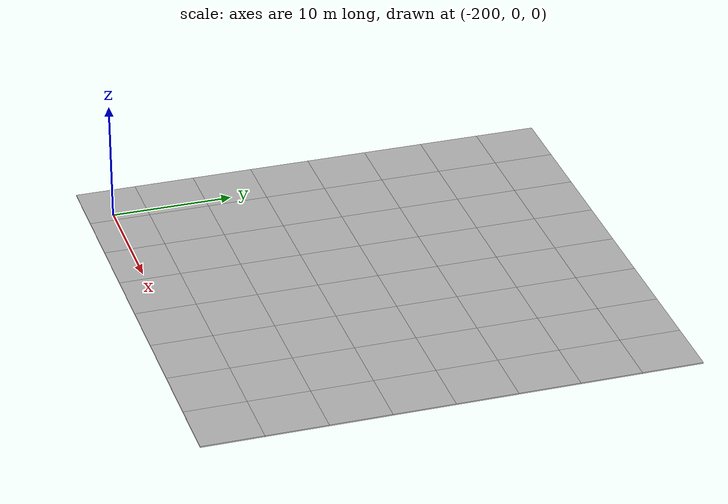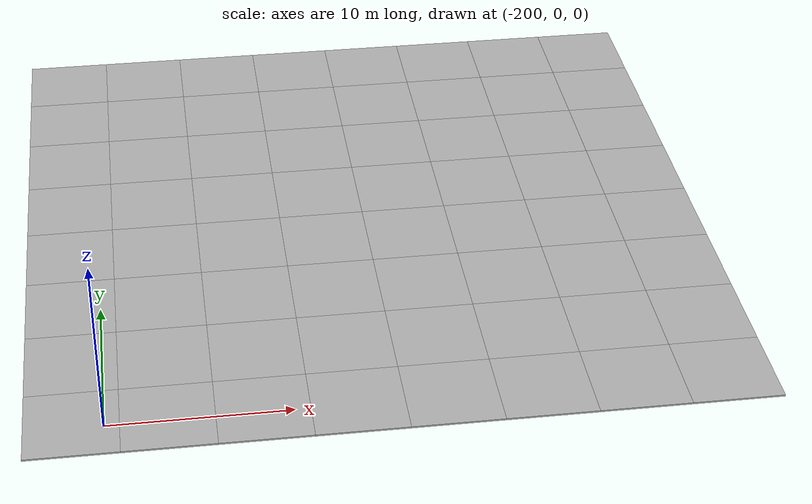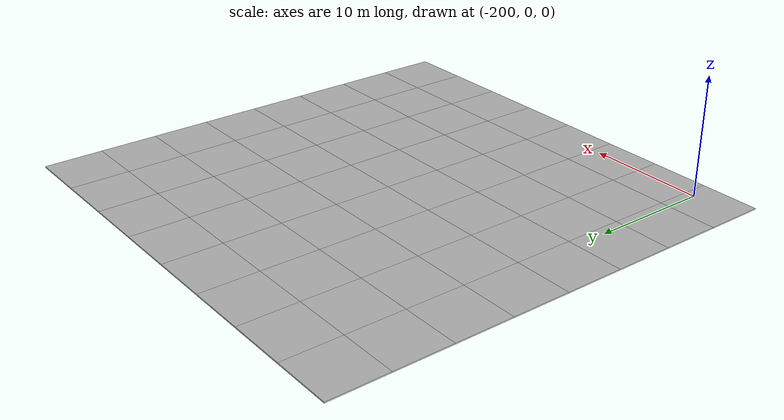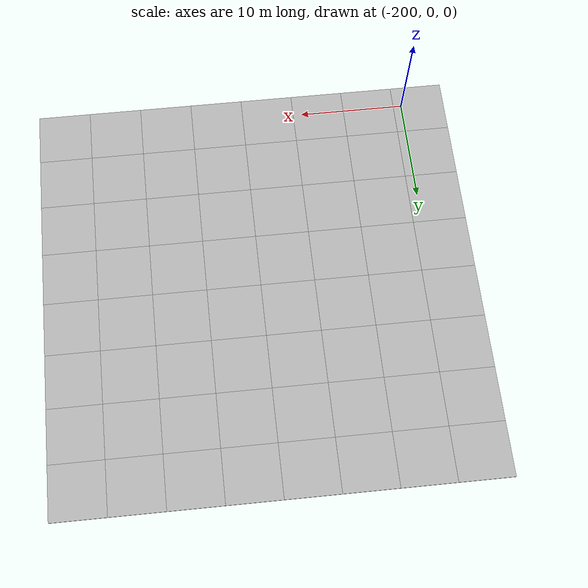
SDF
<sdf version="1.7">
 <world name="default">
  <model name="mud_plane_40x40_26">
   <model name="mud_plane_20x20">
    <model name="mud_plane">
     <static>1</static>
     <link name="link">
      <collision name="collision"><geometry><box><size>10 10 0.1</size></box></geometry></collision>
      <visual name="visual_1">
       <pose>-2.5 2.5 -0.05 0 -0 0</pose>
       <cast_shadows>0</cast_shadows>
       <geometry><box><size>5 5 0.1</size></box></geometry>
       <material>
        <script>
         <uri>model://mud_plane/materials/scripts</uri>
         <uri>model://mud_plane/materials/textures</uri>
         <name>vrc/mud</name>
        </script>
       </material>
      </visual>
      <visual name="visual_2">
       <pose>2.5 2.5 -0.05 0 -0 0</pose>
       <cast_shadows>0</cast_shadows>
       <geometry><box><size>5 5 0.1</size></box></geometry>
       <material>
        <script>
         <uri>model://mud_plane/materials/scripts</uri>
         <uri>model://mud_plane/materials/textures</uri>
         <name>vrc/mud</name>
        </script>
       </material>
      </visual>
      <visual name="visual_3">
       <pose>2.5 -2.5 -0.05 0 -0 0</pose>
       <cast_shadows>0</cast_shadows>
       <geometry><box><size>5 5 0.1</size></box></geometry>
       <material>
        <script>
         <uri>model://mud_plane/materials/scripts</uri>
         <uri>model://mud_plane/materials/textures</uri>
         <name>vrc/mud</name>
        </script>
       </material>
      </visual>
      <visual name="visual_4">
       <pose>-2.5 -2.5 -0.05 0 -0 0</pose>
       <cast_shadows>0</cast_shadows>
       <geometry><box><size>5 5 0.1</size></box></geometry>
       <material>
        <script>
         <uri>model://mud_plane/materials/scripts</uri>
         <uri>model://mud_plane/materials/textures</uri>
         <name>vrc/mud</name>
        </script>
       </material>
      </visual>
     </link>
     <pose>-4.99986 -4.99991 0 0 -0 0</pose>
    </model>
    <model name="mud_plane_0">
     <static>1</static>
     <link name="link">
      <collision name="collision"><geometry><box><size>10 10 0.1</size></box></geometry></collision>
      <visual name="visual_1">
       <pose>-2.5 2.5 -0.05 0 -0 0</pose>
       <cast_shadows>0</cast_shadows>
       <geometry><box><size>5 5 0.1</size></box></geometry>
       <material>
        <script>
         <uri>model://mud_plane/materials/scripts</uri>
         <uri>model://mud_plane/materials/textures</uri>
         <name>vrc/mud</name>
        </script>
       </material>
      </visual>
      <visual name="visual_2">
       <pose>2.5 2.5 -0.05 0 -0 0</pose>
       <cast_shadows>0</cast_shadows>
       <geometry><box><size>5 5 0.1</size></box></geometry>
       <material>
        <script>
         <uri>model://mud_plane/materials/scripts</uri>
         <uri>model://mud_plane/materials/textures</uri>
         <name>vrc/mud</name>
        </script>
       </material>
      </visual>
      <visual name="visual_3">
       <pose>2.5 -2.5 -0.05 0 -0 0</pose>
       <cast_shadows>0</cast_shadows>
       <geometry><box><size>5 5 0.1</size></box></geometry>
       <material>
        <script>
         <uri>model://mud_plane/materials/scripts</uri>
         <uri>model://mud_plane/materials/textures</uri>
         <name>vrc/mud</name>
        </script>
       </material>
      </visual>
      <visual name="visual_4">
       <pose>-2.5 -2.5 -0.05 0 -0 0</pose>
       <cast_shadows>0</cast_shadows>
       <geometry><box><size>5 5 0.1</size></box></geometry>
       <material>
        <script>
         <uri>model://mud_plane/materials/scripts</uri>
         <uri>model://mud_plane/materials/textures</uri>
         <name>vrc/mud</name>
        </script>
       </material>
      </visual>
     </link>
     <pose>-4.99946 4.99954 0 0 -0 0</pose>
    </model>
    <model name="mud_plane_1">
     <static>1</static>
     <link name="link">
      <collision name="collision"><geometry><box><size>10 10 0.1</size></box></geometry></collision>
      <visual name="visual_1">
       <pose>-2.5 2.5 -0.05 0 -0 0</pose>
       <cast_shadows>0</cast_shadows>
       <geometry><box><size>5 5 0.1</size></box></geometry>
       <material>
        <script>
         <uri>model://mud_plane/materials/scripts</uri>
         <uri>model://mud_plane/materials/textures</uri>
         <name>vrc/mud</name>
        </script>
       </material>
      </visual>
      <visual name="visual_2">
       <pose>2.5 2.5 -0.05 0 -0 0</pose>
       <cast_shadows>0</cast_shadows>
       <geometry><box><size>5 5 0.1</size></box></geometry>
       <material>
        <script>
         <uri>model://mud_plane/materials/scripts</uri>
         <uri>model://mud_plane/materials/textures</uri>
         <name>vrc/mud</name>
        </script>
       </material>
      </visual>
      <visual name="visual_3">
       <pose>2.5 -2.5 -0.05 0 -0 0</pose>
       <cast_shadows>0</cast_shadows>
       <geometry><box><size>5 5 0.1</size></box></geometry>
       <material>
        <script>
         <uri>model://mud_plane/materials/scripts</uri>
         <uri>model://mud_plane/materials/textures</uri>
         <name>vrc/mud</name>
        </script>
       </material>
      </visual>
      <visual name="visual_4">
       <pose>-2.5 -2.5 -0.05 0 -0 0</pose>
       <cast_shadows>0</cast_shadows>
       <geometry><box><size>5 5 0.1</size></box></geometry>
       <material>
        <script>
         <uri>model://mud_plane/materials/scripts</uri>
         <uri>model://mud_plane/materials/textures</uri>
         <name>vrc/mud</name>
        </script>
       </material>
      </visual>
     </link>
     <pose>4.99964 -4.99949 0 0 -0 0</pose>
    </model>
    <model name="mud_plane_2">
     <static>1</static>
     <link name="link">
      <collision name="collision"><geometry><box><size>10 10 0.1</size></box></geometry></collision>
      <visual name="visual_1">
       <pose>-2.5 2.5 -0.05 0 -0 0</pose>
       <cast_shadows>0</cast_shadows>
       <geometry><box><size>5 5 0.1</size></box></geometry>
       <material>
        <script>
         <uri>model://mud_plane/materials/scripts</uri>
         <uri>model://mud_plane/materials/textures</uri>
         <name>vrc/mud</name>
        </script>
       </material>
      </visual>
      <visual name="visual_2">
       <pose>2.5 2.5 -0.05 0 -0 0</pose>
       <cast_shadows>0</cast_shadows>
       <geometry><box><size>5 5 0.1</size></box></geometry>
       <material>
        <script>
         <uri>model://mud_plane/materials/scripts</uri>
         <uri>model://mud_plane/materials/textures</uri>
         <name>vrc/mud</name>
        </script>
       </material>
      </visual>
      <visual name="visual_3">
       <pose>2.5 -2.5 -0.05 0 -0 0</pose>
       <cast_shadows>0</cast_shadows>
       <geometry><box><size>5 5 0.1</size></box></geometry>
       <material>
        <script>
         <uri>model://mud_plane/materials/scripts</uri>
         <uri>model://mud_plane/materials/textures</uri>
         <name>vrc/mud</name>
        </script>
       </material>
      </visual>
      <visual name="visual_4">
       <pose>-2.5 -2.5 -0.05 0 -0 0</pose>
       <cast_shadows>0</cast_shadows>
       <geometry><box><size>5 5 0.1</size></box></geometry>
       <material>
        <script>
         <uri>model://mud_plane/materials/scripts</uri>
         <uri>model://mud_plane/materials/textures</uri>
         <name>vrc/mud</name>
        </script>
       </material>
      </visual>
     </link>
     <pose>4.99967 4.99986 0 0 -0 0</pose>
    </model>
    <static>0</static>
    <pose>-9.99895 9.99843 0 0 -0 0</pose>
   </model>
   <model name="mud_plane_20x20_0">
    <model name="mud_plane">
     <static>1</static>
     <link name="link">
      <collision name="collision"><geometry><box><size>10 10 0.1</size></box></geometry></collision>
      <visual name="visual_1">
       <pose>-2.5 2.5 -0.05 0 -0 0</pose>
       <cast_shadows>0</cast_shadows>
       <geometry><box><size>5 5 0.1</size></box></geometry>
       <material>
        <script>
         <uri>model://mud_plane/materials/scripts</uri>
         <uri>model://mud_plane/materials/textures</uri>
         <name>vrc/mud</name>
        </script>
       </material>
      </visual>
      <visual name="visual_2">
       <pose>2.5 2.5 -0.05 0 -0 0</pose>
       <cast_shadows>0</cast_shadows>
       <geometry><box><size>5 5 0.1</size></box></geometry>
       <material>
        <script>
         <uri>model://mud_plane/materials/scripts</uri>
         <uri>model://mud_plane/materials/textures</uri>
         <name>vrc/mud</name>
        </script>
       </material>
      </visual>
      <visual name="visual_3">
       <pose>2.5 -2.5 -0.05 0 -0 0</pose>
       <cast_shadows>0</cast_shadows>
       <geometry><box><size>5 5 0.1</size></box></geometry>
       <material>
        <script>
         <uri>model://mud_plane/materials/scripts</uri>
         <uri>model://mud_plane/materials/textures</uri>
         <name>vrc/mud</name>
        </script>
       </material>
      </visual>
      <visual name="visual_4">
       <pose>-2.5 -2.5 -0.05 0 -0 0</pose>
       <cast_shadows>0</cast_shadows>
       <geometry><box><size>5 5 0.1</size></box></geometry>
       <material>
        <script>
         <uri>model://mud_plane/materials/scripts</uri>
         <uri>model://mud_plane/materials/textures</uri>
         <name>vrc/mud</name>
        </script>
       </material>
      </visual>
     </link>
     <pose>-4.99986 -4.99991 0 0 -0 0</pose>
    </model>
    <model name="mud_plane_0">
     <static>1</static>
     <link name="link">
      <collision name="collision"><geometry><box><size>10 10 0.1</size></box></geometry></collision>
      <visual name="visual_1">
       <pose>-2.5 2.5 -0.05 0 -0 0</pose>
       <cast_shadows>0</cast_shadows>
       <geometry><box><size>5 5 0.1</size></box></geometry>
       <material>
        <script>
         <uri>model://mud_plane/materials/scripts</uri>
         <uri>model://mud_plane/materials/textures</uri>
         <name>vrc/mud</name>
        </script>
       </material>
      </visual>
      <visual name="visual_2">
       <pose>2.5 2.5 -0.05 0 -0 0</pose>
       <cast_shadows>0</cast_shadows>
       <geometry><box><size>5 5 0.1</size></box></geometry>
       <material>
        <script>
         <uri>model://mud_plane/materials/scripts</uri>
         <uri>model://mud_plane/materials/textures</uri>
         <name>vrc/mud</name>
        </script>
       </material>
      </visual>
      <visual name="visual_3">
       <pose>2.5 -2.5 -0.05 0 -0 0</pose>
       <cast_shadows>0</cast_shadows>
       <geometry><box><size>5 5 0.1</size></box></geometry>
       <material>
        <script>
         <uri>model://mud_plane/materials/scripts</uri>
         <uri>model://mud_plane/materials/textures</uri>
         <name>vrc/mud</name>
        </script>
       </material>
      </visual>
      <visual name="visual_4">
       <pose>-2.5 -2.5 -0.05 0 -0 0</pose>
       <cast_shadows>0</cast_shadows>
       <geometry><box><size>5 5 0.1</size></box></geometry>
       <material>
        <script>
         <uri>model://mud_plane/materials/scripts</uri>
         <uri>model://mud_plane/materials/textures</uri>
         <name>vrc/mud</name>
        </script>
       </material>
      </visual>
     </link>
     <pose>-4.99946 4.99954 0 0 -0 0</pose>
    </model>
    <model name="mud_plane_1">
     <static>1</static>
     <link name="link">
      <collision name="collision"><geometry><box><size>10 10 0.1</size></box></geometry></collision>
      <visual name="visual_1">
       <pose>-2.5 2.5 -0.05 0 -0 0</pose>
       <cast_shadows>0</cast_shadows>
       <geometry><box><size>5 5 0.1</size></box></geometry>
       <material>
        <script>
         <uri>model://mud_plane/materials/scripts</uri>
         <uri>model://mud_plane/materials/textures</uri>
         <name>vrc/mud</name>
        </script>
       </material>
      </visual>
      <visual name="visual_2">
       <pose>2.5 2.5 -0.05 0 -0 0</pose>
       <cast_shadows>0</cast_shadows>
       <geometry><box><size>5 5 0.1</size></box></geometry>
       <material>
        <script>
         <uri>model://mud_plane/materials/scripts</uri>
         <uri>model://mud_plane/materials/textures</uri>
         <name>vrc/mud</name>
        </script>
       </material>
      </visual>
      <visual name="visual_3">
       <pose>2.5 -2.5 -0.05 0 -0 0</pose>
       <cast_shadows>0</cast_shadows>
       <geometry><box><size>5 5 0.1</size></box></geometry>
       <material>
        <script>
         <uri>model://mud_plane/materials/scripts</uri>
         <uri>model://mud_plane/materials/textures</uri>
         <name>vrc/mud</name>
        </script>
       </material>
      </visual>
      <visual name="visual_4">
       <pose>-2.5 -2.5 -0.05 0 -0 0</pose>
       <cast_shadows>0</cast_shadows>
       <geometry><box><size>5 5 0.1</size></box></geometry>
       <material>
        <script>
         <uri>model://mud_plane/materials/scripts</uri>
         <uri>model://mud_plane/materials/textures</uri>
         <name>vrc/mud</name>
        </script>
       </material>
      </visual>
     </link>
     <pose>4.99964 -4.99949 0 0 -0 0</pose>
    </model>
    <model name="mud_plane_2">
     <static>1</static>
     <link name="link">
      <collision name="collision"><geometry><box><size>10 10 0.1</size></box></geometry></collision>
      <visual name="visual_1">
       <pose>-2.5 2.5 -0.05 0 -0 0</pose>
       <cast_shadows>0</cast_shadows>
       <geometry><box><size>5 5 0.1</size></box></geometry>
       <material>
        <script>
         <uri>model://mud_plane/materials/scripts</uri>
         <uri>model://mud_plane/materials/textures</uri>
         <name>vrc/mud</name>
        </script>
       </material>
      </visual>
      <visual name="visual_2">
       <pose>2.5 2.5 -0.05 0 -0 0</pose>
       <cast_shadows>0</cast_shadows>
       <geometry><box><size>5 5 0.1</size></box></geometry>
       <material>
        <script>
         <uri>model://mud_plane/materials/scripts</uri>
         <uri>model://mud_plane/materials/textures</uri>
         <name>vrc/mud</name>
        </script>
       </material>
      </visual>
      <visual name="visual_3">
       <pose>2.5 -2.5 -0.05 0 -0 0</pose>
       <cast_shadows>0</cast_shadows>
       <geometry><box><size>5 5 0.1</size></box></geometry>
       <material>
        <script>
         <uri>model://mud_plane/materials/scripts</uri>
         <uri>model://mud_plane/materials/textures</uri>
         <name>vrc/mud</name>
        </script>
       </material>
      </visual>
      <visual name="visual_4">
       <pose>-2.5 -2.5 -0.05 0 -0 0</pose>
       <cast_shadows>0</cast_shadows>
       <geometry><box><size>5 5 0.1</size></box></geometry>
       <material>
        <script>
         <uri>model://mud_plane/materials/scripts</uri>
         <uri>model://mud_plane/materials/textures</uri>
         <name>vrc/mud</name>
        </script>
       </material>
      </visual>
     </link>
     <pose>4.99967 4.99986 0 0 -0 0</pose>
    </model>
    <static>0</static>
    <pose>9.99933 9.9997 0 0 -0 0</pose>
   </model>
   <model name="mud_plane_20x20_1">
    <model name="mud_plane">
     <static>1</static>
     <link name="link">
      <collision name="collision"><geometry><box><size>10 10 0.1</size></box></geometry></collision>
      <visual name="visual_1">
       <pose>-2.5 2.5 -0.05 0 -0 0</pose>
       <cast_shadows>0</cast_shadows>
       <geometry><box><size>5 5 0.1</size></box></geometry>
       <material>
        <script>
         <uri>model://mud_plane/materials/scripts</uri>
         <uri>model://mud_plane/materials/textures</uri>
         <name>vrc/mud</name>
        </script>
       </material>
      </visual>
      <visual name="visual_2">
       <pose>2.5 2.5 -0.05 0 -0 0</pose>
       <cast_shadows>0</cast_shadows>
       <geometry><box><size>5 5 0.1</size></box></geometry>
       <material>
        <script>
         <uri>model://mud_plane/materials/scripts</uri>
         <uri>model://mud_plane/materials/textures</uri>
         <name>vrc/mud</name>
        </script>
       </material>
      </visual>
      <visual name="visual_3">
       <pose>2.5 -2.5 -0.05 0 -0 0</pose>
       <cast_shadows>0</cast_shadows>
       <geometry><box><size>5 5 0.1</size></box></geometry>
       <material>
        <script>
         <uri>model://mud_plane/materials/scripts</uri>
         <uri>model://mud_plane/materials/textures</uri>
         <name>vrc/mud</name>
        </script>
       </material>
      </visual>
      <visual name="visual_4">
       <pose>-2.5 -2.5 -0.05 0 -0 0</pose>
       <cast_shadows>0</cast_shadows>
       <geometry><box><size>5 5 0.1</size></box></geometry>
       <material>
        <script>
         <uri>model://mud_plane/materials/scripts</uri>
         <uri>model://mud_plane/materials/textures</uri>
         <name>vrc/mud</name>
        </script>
       </material>
      </visual>
     </link>
     <pose>-4.99986 -4.99991 0 0 -0 0</pose>
    </model>
    <model name="mud_plane_0">
     <static>1</static>
     <link name="link">
      <collision name="collision"><geometry><box><size>10 10 0.1</size></box></geometry></collision>
      <visual name="visual_1">
       <pose>-2.5 2.5 -0.05 0 -0 0</pose>
       <cast_shadows>0</cast_shadows>
       <geometry><box><size>5 5 0.1</size></box></geometry>
       <material>
        <script>
         <uri>model://mud_plane/materials/scripts</uri>
         <uri>model://mud_plane/materials/textures</uri>
         <name>vrc/mud</name>
        </script>
       </material>
      </visual>
      <visual name="visual_2">
       <pose>2.5 2.5 -0.05 0 -0 0</pose>
       <cast_shadows>0</cast_shadows>
       <geometry><box><size>5 5 0.1</size></box></geometry>
       <material>
        <script>
         <uri>model://mud_plane/materials/scripts</uri>
         <uri>model://mud_plane/materials/textures</uri>
         <name>vrc/mud</name>
        </script>
       </material>
      </visual>
      <visual name="visual_3">
       <pose>2.5 -2.5 -0.05 0 -0 0</pose>
       <cast_shadows>0</cast_shadows>
       <geometry><box><size>5 5 0.1</size></box></geometry>
       <material>
        <script>
         <uri>model://mud_plane/materials/scripts</uri>
         <uri>model://mud_plane/materials/textures</uri>
         <name>vrc/mud</name>
        </script>
       </material>
      </visual>
      <visual name="visual_4">
       <pose>-2.5 -2.5 -0.05 0 -0 0</pose>
       <cast_shadows>0</cast_shadows>
       <geometry><box><size>5 5 0.1</size></box></geometry>
       <material>
        <script>
         <uri>model://mud_plane/materials/scripts</uri>
         <uri>model://mud_plane/materials/textures</uri>
         <name>vrc/mud</name>
        </script>
       </material>
      </visual>
     </link>
     <pose>-4.99946 4.99954 0 0 -0 0</pose>
    </model>
    <model name="mud_plane_1">
     <static>1</static>
     <link name="link">
      <collision name="collision"><geometry><box><size>10 10 0.1</size></box></geometry></collision>
      <visual name="visual_1">
       <pose>-2.5 2.5 -0.05 0 -0 0</pose>
       <cast_shadows>0</cast_shadows>
       <geometry><box><size>5 5 0.1</size></box></geometry>
       <material>
        <script>
         <uri>model://mud_plane/materials/scripts</uri>
         <uri>model://mud_plane/materials/textures</uri>
         <name>vrc/mud</name>
        </script>
       </material>
      </visual>
      <visual name="visual_2">
       <pose>2.5 2.5 -0.05 0 -0 0</pose>
       <cast_shadows>0</cast_shadows>
       <geometry><box><size>5 5 0.1</size></box></geometry>
       <material>
        <script>
         <uri>model://mud_plane/materials/scripts</uri>
         <uri>model://mud_plane/materials/textures</uri>
         <name>vrc/mud</name>
        </script>
       </material>
      </visual>
      <visual name="visual_3">
       <pose>2.5 -2.5 -0.05 0 -0 0</pose>
       <cast_shadows>0</cast_shadows>
       <geometry><box><size>5 5 0.1</size></box></geometry>
       <material>
        <script>
         <uri>model://mud_plane/materials/scripts</uri>
         <uri>model://mud_plane/materials/textures</uri>
         <name>vrc/mud</name>
        </script>
       </material>
      </visual>
      <visual name="visual_4">
       <pose>-2.5 -2.5 -0.05 0 -0 0</pose>
       <cast_shadows>0</cast_shadows>
       <geometry><box><size>5 5 0.1</size></box></geometry>
       <material>
        <script>
         <uri>model://mud_plane/materials/scripts</uri>
         <uri>model://mud_plane/materials/textures</uri>
         <name>vrc/mud</name>
        </script>
       </material>
      </visual>
     </link>
     <pose>4.99964 -4.99949 0 0 -0 0</pose>
    </model>
    <model name="mud_plane_2">
     <static>1</static>
     <link name="link">
      <collision name="collision"><geometry><box><size>10 10 0.1</size></box></geometry></collision>
      <visual name="visual_1">
       <pose>-2.5 2.5 -0.05 0 -0 0</pose>
       <cast_shadows>0</cast_shadows>
       <geometry><box><size>5 5 0.1</size></box></geometry>
       <material>
        <script>
         <uri>model://mud_plane/materials/scripts</uri>
         <uri>model://mud_plane/materials/textures</uri>
         <name>vrc/mud</name>
        </script>
       </material>
      </visual>
      <visual name="visual_2">
       <pose>2.5 2.5 -0.05 0 -0 0</pose>
       <cast_shadows>0</cast_shadows>
       <geometry><box><size>5 5 0.1</size></box></geometry>
       <material>
        <script>
         <uri>model://mud_plane/materials/scripts</uri>
         <uri>model://mud_plane/materials/textures</uri>
         <name>vrc/mud</name>
        </script>
       </material>
      </visual>
      <visual name="visual_3">
       <pose>2.5 -2.5 -0.05 0 -0 0</pose>
       <cast_shadows>0</cast_shadows>
       <geometry><box><size>5 5 0.1</size></box></geometry>
       <material>
        <script>
         <uri>model://mud_plane/materials/scripts</uri>
         <uri>model://mud_plane/materials/textures</uri>
         <name>vrc/mud</name>
        </script>
       </material>
      </visual>
      <visual name="visual_4">
       <pose>-2.5 -2.5 -0.05 0 -0 0</pose>
       <cast_shadows>0</cast_shadows>
       <geometry><box><size>5 5 0.1</size></box></geometry>
       <material>
        <script>
         <uri>model://mud_plane/materials/scripts</uri>
         <uri>model://mud_plane/materials/textures</uri>
         <name>vrc/mud</name>
        </script>
       </material>
      </visual>
     </link>
     <pose>4.99967 4.99986 0 0 -0 0</pose>
    </model>
    <static>0</static>
    <pose>9.9993 -9.99877 0 0 -0 0</pose>
   </model>
   <model name="mud_plane_20x20_2">
    <model name="mud_plane">
     <static>1</static>
     <link name="link">
      <collision name="collision"><geometry><box><size>10 10 0.1</size></box></geometry></collision>
      <visual name="visual_1">
       <pose>-2.5 2.5 -0.05 0 -0 0</pose>
       <cast_shadows>0</cast_shadows>
       <geometry><box><size>5 5 0.1</size></box></geometry>
       <material>
        <script>
         <uri>model://mud_plane/materials/scripts</uri>
         <uri>model://mud_plane/materials/textures</uri>
         <name>vrc/mud</name>
        </script>
       </material>
      </visual>
      <visual name="visual_2">
       <pose>2.5 2.5 -0.05 0 -0 0</pose>
       <cast_shadows>0</cast_shadows>
       <geometry><box><size>5 5 0.1</size></box></geometry>
       <material>
        <script>
         <uri>model://mud_plane/materials/scripts</uri>
         <uri>model://mud_plane/materials/textures</uri>
         <name>vrc/mud</name>
        </script>
       </material>
      </visual>
      <visual name="visual_3">
       <pose>2.5 -2.5 -0.05 0 -0 0</pose>
       <cast_shadows>0</cast_shadows>
       <geometry><box><size>5 5 0.1</size></box></geometry>
       <material>
        <script>
         <uri>model://mud_plane/materials/scripts</uri>
         <uri>model://mud_plane/materials/textures</uri>
         <name>vrc/mud</name>
        </script>
       </material>
      </visual>
      <visual name="visual_4">
       <pose>-2.5 -2.5 -0.05 0 -0 0</pose>
       <cast_shadows>0</cast_shadows>
       <geometry><box><size>5 5 0.1</size></box></geometry>
       <material>
        <script>
         <uri>model://mud_plane/materials/scripts</uri>
         <uri>model://mud_plane/materials/textures</uri>
         <name>vrc/mud</name>
        </script>
       </material>
      </visual>
     </link>
     <pose>-4.99986 -4.99991 0 0 -0 0</pose>
    </model>
    <model name="mud_plane_0">
     <static>1</static>
     <link name="link">
      <collision name="collision"><geometry><box><size>10 10 0.1</size></box></geometry></collision>
      <visual name="visual_1">
       <pose>-2.5 2.5 -0.05 0 -0 0</pose>
       <cast_shadows>0</cast_shadows>
       <geometry><box><size>5 5 0.1</size></box></geometry>
       <material>
        <script>
         <uri>model://mud_plane/materials/scripts</uri>
         <uri>model://mud_plane/materials/textures</uri>
         <name>vrc/mud</name>
        </script>
       </material>
      </visual>
      <visual name="visual_2">
       <pose>2.5 2.5 -0.05 0 -0 0</pose>
       <cast_shadows>0</cast_shadows>
       <geometry><box><size>5 5 0.1</size></box></geometry>
       <material>
        <script>
         <uri>model://mud_plane/materials/scripts</uri>
         <uri>model://mud_plane/materials/textures</uri>
         <name>vrc/mud</name>
        </script>
       </material>
      </visual>
      <visual name="visual_3">
       <pose>2.5 -2.5 -0.05 0 -0 0</pose>
       <cast_shadows>0</cast_shadows>
       <geometry><box><size>5 5 0.1</size></box></geometry>
       <material>
        <script>
         <uri>model://mud_plane/materials/scripts</uri>
         <uri>model://mud_plane/materials/textures</uri>
         <name>vrc/mud</name>
        </script>
       </material>
      </visual>
      <visual name="visual_4">
       <pose>-2.5 -2.5 -0.05 0 -0 0</pose>
       <cast_shadows>0</cast_shadows>
       <geometry><box><size>5 5 0.1</size></box></geometry>
       <material>
        <script>
         <uri>model://mud_plane/materials/scripts</uri>
         <uri>model://mud_plane/materials/textures</uri>
         <name>vrc/mud</name>
        </script>
       </material>
      </visual>
     </link>
     <pose>-4.99946 4.99954 0 0 -0 0</pose>
    </model>
    <model name="mud_plane_1">
     <static>1</static>
     <link name="link">
      <collision name="collision"><geometry><box><size>10 10 0.1</size></box></geometry></collision>
      <visual name="visual_1">
       <pose>-2.5 2.5 -0.05 0 -0 0</pose>
       <cast_shadows>0</cast_shadows>
       <geometry><box><size>5 5 0.1</size></box></geometry>
       <material>
        <script>
         <uri>model://mud_plane/materials/scripts</uri>
         <uri>model://mud_plane/materials/textures</uri>
         <name>vrc/mud</name>
        </script>
       </material>
      </visual>
      <visual name="visual_2">
       <pose>2.5 2.5 -0.05 0 -0 0</pose>
       <cast_shadows>0</cast_shadows>
       <geometry><box><size>5 5 0.1</size></box></geometry>
       <material>
        <script>
         <uri>model://mud_plane/materials/scripts</uri>
         <uri>model://mud_plane/materials/textures</uri>
         <name>vrc/mud</name>
        </script>
       </material>
      </visual>
      <visual name="visual_3">
       <pose>2.5 -2.5 -0.05 0 -0 0</pose>
       <cast_shadows>0</cast_shadows>
       <geometry><box><size>5 5 0.1</size></box></geometry>
       <material>
        <script>
         <uri>model://mud_plane/materials/scripts</uri>
         <uri>model://mud_plane/materials/textures</uri>
         <name>vrc/mud</name>
        </script>
       </material>
      </visual>
      <visual name="visual_4">
       <pose>-2.5 -2.5 -0.05 0 -0 0</pose>
       <cast_shadows>0</cast_shadows>
       <geometry><box><size>5 5 0.1</size></box></geometry>
       <material>
        <script>
         <uri>model://mud_plane/materials/scripts</uri>
         <uri>model://mud_plane/materials/textures</uri>
         <name>vrc/mud</name>
        </script>
       </material>
      </visual>
     </link>
     <pose>4.99964 -4.99949 0 0 -0 0</pose>
    </model>
    <model name="mud_plane_2">
     <static>1</static>
     <link name="link">
      <collision name="collision"><geometry><box><size>10 10 0.1</size></box></geometry></collision>
      <visual name="visual_1">
       <pose>-2.5 2.5 -0.05 0 -0 0</pose>
       <cast_shadows>0</cast_shadows>
       <geometry><box><size>5 5 0.1</size></box></geometry>
       <material>
        <script>
         <uri>model://mud_plane/materials/scripts</uri>
         <uri>model://mud_plane/materials/textures</uri>
         <name>vrc/mud</name>
        </script>
       </material>
      </visual>
      <visual name="visual_2">
       <pose>2.5 2.5 -0.05 0 -0 0</pose>
       <cast_shadows>0</cast_shadows>
       <geometry><box><size>5 5 0.1</size></box></geometry>
       <material>
        <script>
         <uri>model://mud_plane/materials/scripts</uri>
         <uri>model://mud_plane/materials/textures</uri>
         <name>vrc/mud</name>
        </script>
       </material>
      </visual>
      <visual name="visual_3">
       <pose>2.5 -2.5 -0.05 0 -0 0</pose>
       <cast_shadows>0</cast_shadows>
       <geometry><box><size>5 5 0.1</size></box></geometry>
       <material>
        <script>
         <uri>model://mud_plane/materials/scripts</uri>
         <uri>model://mud_plane/materials/textures</uri>
         <name>vrc/mud</name>
        </script>
       </material>
      </visual>
      <visual name="visual_4">
       <pose>-2.5 -2.5 -0.05 0 -0 0</pose>
       <cast_shadows>0</cast_shadows>
       <geometry><box><size>5 5 0.1</size></box></geometry>
       <material>
        <script>
         <uri>model://mud_plane/materials/scripts</uri>
         <uri>model://mud_plane/materials/textures</uri>
         <name>vrc/mud</name>
        </script>
       </material>
      </visual>
     </link>
     <pose>4.99967 4.99986 0 0 -0 0</pose>
    </model>
    <static>0</static>
    <pose>-9.99969 -9.99935 0 0 -0 0</pose>
   </model>
   <static>0</static>
   <pose>-184.195 17.8716 0 0 -0 0</pose>
  </model>
 </world>
</sdf>
